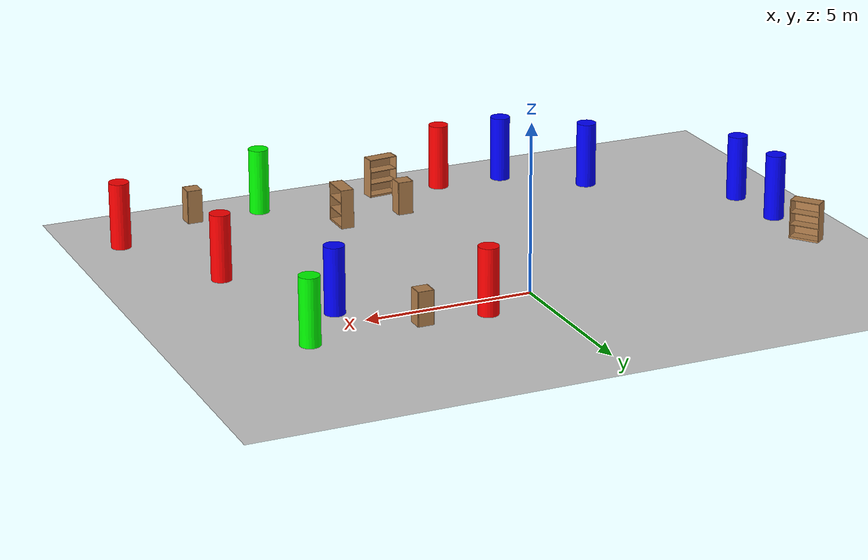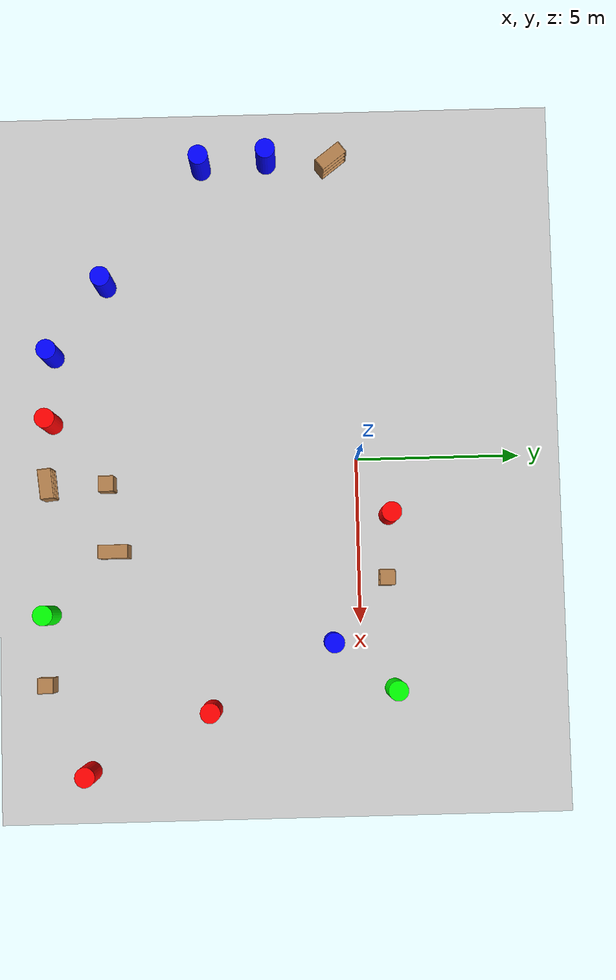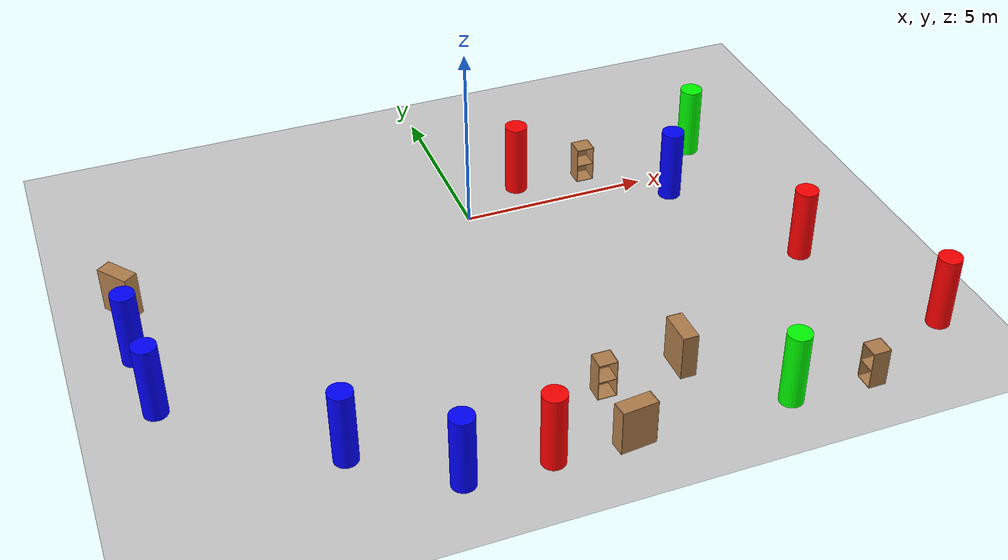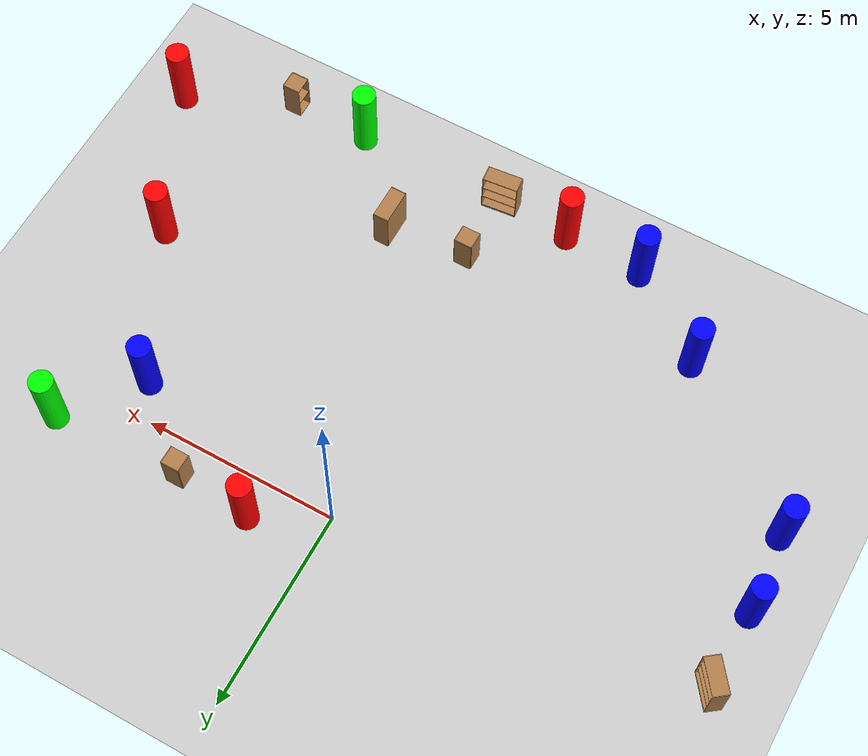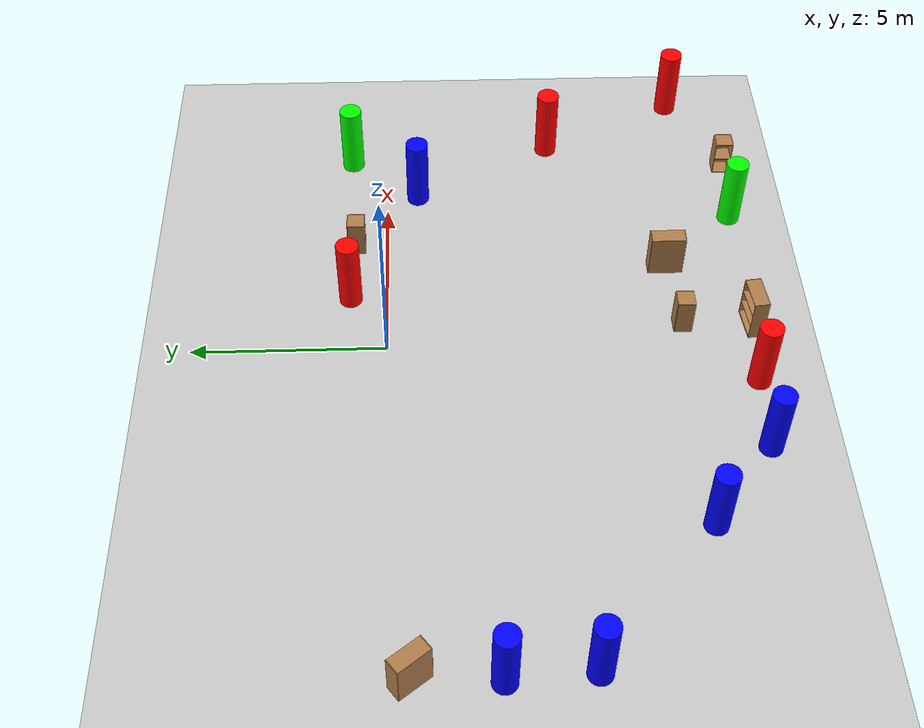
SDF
<sdf version="1.6">
 <world name="default">
  <model name="ground_plane">
   <static>1</static>
   <link name="link">
    <collision name="collision">
     <geometry><plane><normal>0 0 1</normal><size>100 100</size></plane></geometry>
     <surface>
      <contact><collide_bitmask>65535</collide_bitmask></contact>
      <friction><ode><mu>100</mu><mu2>50</mu2></ode></friction>
     </surface>
    </collision>
    <visual name="visual">
     <cast_shadows>0</cast_shadows>
     <geometry><plane><normal>0 0 1</normal><size>100 100</size></plane></geometry>
     <material>
      <script><uri>file://media/materials/scripts/gazebo.material</uri><name>Gazebo/Grey</name></script>
     </material>
    </visual>
   </link>
  </model>
  <model name="bookshelf0">
   <static>1</static>
   <link name="link">
    <inertial><mass>1</mass></inertial>
    <collision name="back">
     <pose>0 0.005 0.6 0 -0 0</pose>
     <geometry><box><size>0.9 0.01 1.2</size></box></geometry>
    </collision>
    <visual name="visual1">
     <pose>0 0.005 0.6 0 -0 0</pose>
     <geometry><box><size>0.9 0.01 1.2</size></box></geometry>
     <material>
      <script><uri>file://media/materials/scripts/gazebo.material</uri><name>Gazebo/Wood</name></script>
     </material>
    </visual>
    <collision name="left_side">
     <pose>0.45 -0.195 0.6 0 -0 0</pose>
     <geometry><box><size>0.02 0.4 1.2</size></box></geometry>
    </collision>
    <visual name="visual2">
     <pose>0.45 -0.195 0.6 0 -0 0</pose>
     <geometry><box><size>0.02 0.4 1.2</size></box></geometry>
     <material>
      <script><uri>file://media/materials/scripts/gazebo.material</uri><name>Gazebo/Wood</name></script>
     </material>
    </visual>
    <collision name="right_side">
     <pose>-0.45 -0.195 0.6 0 -0 0</pose>
     <geometry><box><size>0.02 0.4 1.2</size></box></geometry>
    </collision>
    <visual name="visual3">
     <pose>-0.45 -0.195 0.6 0 -0 0</pose>
     <geometry><box><size>0.02 0.4 1.2</size></box></geometry>
     <material>
      <script><uri>file://media/materials/scripts/gazebo.material</uri><name>Gazebo/Wood</name></script>
     </material>
    </visual>
    <collision name="bottom">
     <pose>0 -0.195 0.03 0 -0 0</pose>
     <geometry><box><size>0.88 0.4 0.06</size></box></geometry>
    </collision>
    <visual name="visual4">
     <pose>0 -0.195 0.03 0 -0 0</pose>
     <geometry><box><size>0.88 0.4 0.06</size></box></geometry>
     <material>
      <script><uri>file://media/materials/scripts/gazebo.material</uri><name>Gazebo/Wood</name></script>
     </material>
    </visual>
    <collision name="top">
     <pose>0 -0.195 1.19 0 -0 0</pose>
     <geometry><box><size>0.88 0.4 0.02</size></box></geometry>
    </collision>
    <visual name="visual5">
     <pose>0 -0.195 1.19 0 -0 0</pose>
     <geometry><box><size>0.88 0.4 0.02</size></box></geometry>
     <material>
      <script><uri>file://media/materials/scripts/gazebo.material</uri><name>Gazebo/Wood</name></script>
     </material>
    </visual>
    <collision name="low_shelf">
     <pose>0 -0.195 0.43 0 -0 0</pose>
     <geometry><box><size>0.88 0.4 0.02</size></box></geometry>
    </collision>
    <visual name="visual6">
     <pose>0 -0.195 0.43 0 -0 0</pose>
     <geometry><box><size>0.88 0.4 0.02</size></box></geometry>
     <material>
      <script><uri>file://media/materials/scripts/gazebo.material</uri><name>Gazebo/Wood</name></script>
     </material>
    </visual>
    <collision name="high_shelf">
     <pose>0 -0.195 0.8 0 -0 0</pose>
     <geometry><box><size>0.88 0.4 0.02</size></box></geometry>
    </collision>
    <visual name="visual7">
     <pose>0 -0.195 0.8 0 -0 0</pose>
     <geometry><box><size>0.88 0.4 0.02</size></box></geometry>
     <material>
      <script><uri>file://media/materials/scripts/gazebo.material</uri><name>Gazebo/Wood</name></script>
     </material>
    </visual>
   </link>
   <pose>-9.41642 -0.664219 0 0 -0 2.221</pose>
  </model>
  <model name="bookshelf3">
   <static>1</static>
   <link name="link">
    <inertial><mass>1</mass></inertial>
    <collision name="back">
     <pose>0 0.005 0.6 0 -0 0</pose>
     <geometry><box><size>0.9 0.01 1.2</size></box></geometry>
    </collision>
    <visual name="visual1">
     <pose>0 0.005 0.6 0 -0 0</pose>
     <geometry><box><size>0.9 0.01 1.2</size></box></geometry>
     <material>
      <script><uri>file://media/materials/scripts/gazebo.material</uri><name>Gazebo/Wood</name></script>
     </material>
    </visual>
    <collision name="left_side">
     <pose>0.45 -0.195 0.6 0 -0 0</pose>
     <geometry><box><size>0.02 0.4 1.2</size></box></geometry>
    </collision>
    <visual name="visual2">
     <pose>0.45 -0.195 0.6 0 -0 0</pose>
     <geometry><box><size>0.02 0.4 1.2</size></box></geometry>
     <material>
      <script><uri>file://media/materials/scripts/gazebo.material</uri><name>Gazebo/Wood</name></script>
     </material>
    </visual>
    <collision name="right_side">
     <pose>-0.45 -0.195 0.6 0 -0 0</pose>
     <geometry><box><size>0.02 0.4 1.2</size></box></geometry>
    </collision>
    <visual name="visual3">
     <pose>-0.45 -0.195 0.6 0 -0 0</pose>
     <geometry><box><size>0.02 0.4 1.2</size></box></geometry>
     <material>
      <script><uri>file://media/materials/scripts/gazebo.material</uri><name>Gazebo/Wood</name></script>
     </material>
    </visual>
    <collision name="bottom">
     <pose>0 -0.195 0.03 0 -0 0</pose>
     <geometry><box><size>0.88 0.4 0.06</size></box></geometry>
    </collision>
    <visual name="visual4">
     <pose>0 -0.195 0.03 0 -0 0</pose>
     <geometry><box><size>0.88 0.4 0.06</size></box></geometry>
     <material>
      <script><uri>file://media/materials/scripts/gazebo.material</uri><name>Gazebo/Wood</name></script>
     </material>
    </visual>
    <collision name="top">
     <pose>0 -0.195 1.19 0 -0 0</pose>
     <geometry><box><size>0.88 0.4 0.02</size></box></geometry>
    </collision>
    <visual name="visual5">
     <pose>0 -0.195 1.19 0 -0 0</pose>
     <geometry><box><size>0.88 0.4 0.02</size></box></geometry>
     <material>
      <script><uri>file://media/materials/scripts/gazebo.material</uri><name>Gazebo/Wood</name></script>
     </material>
    </visual>
    <collision name="low_shelf">
     <pose>0 -0.195 0.43 0 -0 0</pose>
     <geometry><box><size>0.88 0.4 0.02</size></box></geometry>
    </collision>
    <visual name="visual6">
     <pose>0 -0.195 0.43 0 -0 0</pose>
     <geometry><box><size>0.88 0.4 0.02</size></box></geometry>
     <material>
      <script><uri>file://media/materials/scripts/gazebo.material</uri><name>Gazebo/Wood</name></script>
     </material>
    </visual>
    <collision name="high_shelf">
     <pose>0 -0.195 0.8 0 -0 0</pose>
     <geometry><box><size>0.88 0.4 0.02</size></box></geometry>
    </collision>
    <visual name="visual7">
     <pose>0 -0.195 0.8 0 -0 0</pose>
     <geometry><box><size>0.88 0.4 0.02</size></box></geometry>
     <material>
      <script><uri>file://media/materials/scripts/gazebo.material</uri><name>Gazebo/Wood</name></script>
     </material>
    </visual>
   </link>
   <pose>0.596082 -9.6045 0 0 0 -3.04017</pose>
  </model>
  <model name="red3">
   <link name="link">
    <pose>-0.202221 0.506091 0 0 -0 0</pose>
    <inertial>
     <mass>1</mass>
     <inertia><ixx>0.145833</ixx><ixy>0</ixy><ixz>0</ixz><iyy>0.145833</iyy><iyz>0</iyz><izz>0.125</izz></inertia>
    </inertial>
    <visual name="visual">
     <geometry><cylinder><radius>0.3</radius><length>2</length></cylinder></geometry>
     <material>
      <script><name>Gazebo/Grey</name><uri>file://media/materials/scripts/gazebo.material</uri></script>
      <ambient>1 0 0 1</ambient>
      <diffuse>0.7 0.7 0.7 1</diffuse>
      <specular>0.01 0.01 0.01 1</specular>
      <emissive>0 0 0 1</emissive>
      <shader type="vertex"><normal_map>__default__</normal_map></shader>
     </material>
    </visual>
    <collision name="collision">
     <geometry><cylinder><radius>0.3</radius><length>2</length></cylinder></geometry>
     <surface>
      <friction>
       <ode><mu>1</mu><mu2>1</mu2><fdir1>0 0 0</fdir1><slip1>0</slip1><slip2>0</slip2></ode>
       <torsional>
        <coefficient>1</coefficient>
        <patch_radius>0</patch_radius>
        <surface_radius>0</surface_radius>
        <use_patch_radius>1</use_patch_radius>
        <ode><slip>0</slip></ode>
       </torsional>
      </friction>
      <bounce><restitution_coefficient>0</restitution_coefficient><threshold>1e+06</threshold></bounce>
      <contact>
       <collide_without_contact>0</collide_without_contact>
       <collide_without_contact_bitmask>1</collide_without_contact_bitmask>
       <collide_bitmask>1</collide_bitmask>
       <ode>
        <soft_cfm>0</soft_cfm>
        <soft_erp>0.2</soft_erp>
        <kp>1e+13</kp>
        <kd>1</kd>
        <max_vel>0.01</max_vel>
        <min_depth>0</min_depth>
       </ode>
       <bullet>
        <split_impulse>1</split_impulse>
        <split_impulse_penetration_threshold>-0.01</split_impulse_penetration_threshold>
        <soft_cfm>0</soft_cfm>
        <soft_erp>0.2</soft_erp>
        <kp>1e+13</kp>
        <kd>1</kd>
       </bullet>
      </contact>
     </surface>
    </collision>
   </link>
   <static>0</static>
   <pose>-1.12177 -9.80828 0.999991 0 -0 4.9e-05</pose>
  </model>
  <model name="blue0">
   <link name="link">
    <inertial>
     <mass>1</mass>
     <inertia><ixx>0.145833</ixx><ixy>0</ixy><ixz>0</ixz><iyy>0.145833</iyy><iyz>0</iyz><izz>0.125</izz></inertia>
    </inertial>
    <visual name="visual">
     <geometry><cylinder><radius>0.3</radius><length>2</length></cylinder></geometry>
     <material>
      <script><name>Gazebo/Grey</name><uri>file://media/materials/scripts/gazebo.material</uri></script>
      <ambient>0 0 1 1</ambient>
      <diffuse>0.7 0.7 0.7 1</diffuse>
      <specular>0.01 0.01 0.01 1</specular>
      <emissive>0 0 0 1</emissive>
      <shader type="vertex"><normal_map>__default__</normal_map></shader>
     </material>
    </visual>
    <collision name="collision">
     <geometry><cylinder><radius>0.2</radius><length>2</length></cylinder></geometry>
     <surface>
      <friction>
       <ode><mu>1</mu><mu2>1</mu2><fdir1>0 0 0</fdir1><slip1>0</slip1><slip2>0</slip2></ode>
       <torsional>
        <coefficient>1</coefficient>
        <patch_radius>0</patch_radius>
        <surface_radius>0</surface_radius>
        <use_patch_radius>1</use_patch_radius>
        <ode><slip>0</slip></ode>
       </torsional>
      </friction>
      <bounce><restitution_coefficient>0</restitution_coefficient><threshold>1e+06</threshold></bounce>
      <contact>
       <collide_without_contact>0</collide_without_contact>
       <collide_without_contact_bitmask>1</collide_without_contact_bitmask>
       <collide_bitmask>1</collide_bitmask>
       <ode>
        <soft_cfm>0</soft_cfm>
        <soft_erp>0.2</soft_erp>
        <kp>1e+13</kp>
        <kd>1</kd>
        <max_vel>0.01</max_vel>
        <min_depth>0</min_depth>
       </ode>
       <bullet>
        <split_impulse>1</split_impulse>
        <split_impulse_penetration_threshold>-0.01</split_impulse_penetration_threshold>
        <soft_cfm>0</soft_cfm>
        <soft_erp>0.2</soft_erp>
        <kp>1e+13</kp>
        <kd>1</kd>
       </bullet>
      </contact>
     </surface>
    </collision>
   </link>
   <static>0</static>
   <pose>-3.38855 -9.22957 0.999996 0 0 -0.011931</pose>
  </model>
  <model name="blue3">
   <link name="link">
    <inertial>
     <mass>1</mass>
     <inertia><ixx>0.145833</ixx><ixy>0</ixy><ixz>0</ixz><iyy>0.145833</iyy><iyz>0</iyz><izz>0.125</izz></inertia>
    </inertial>
    <visual name="visual">
     <geometry><cylinder><radius>0.3</radius><length>2</length></cylinder></geometry>
     <material>
      <script><name>Gazebo/Grey</name><uri>file://media/materials/scripts/gazebo.material</uri></script>
      <ambient>0 0 1 1</ambient>
      <diffuse>0.7 0.7 0.7 1</diffuse>
      <specular>0.01 0.01 0.01 1</specular>
      <emissive>0 0 0 1</emissive>
      <shader type="vertex"><normal_map>__default__</normal_map></shader>
     </material>
    </visual>
    <collision name="collision">
     <geometry><cylinder><radius>0.2</radius><length>2</length></cylinder></geometry>
     <surface>
      <friction>
       <ode><mu>1</mu><mu2>1</mu2><fdir1>0 0 0</fdir1><slip1>0</slip1><slip2>0</slip2></ode>
       <torsional>
        <coefficient>1</coefficient>
        <patch_radius>0</patch_radius>
        <surface_radius>0</surface_radius>
        <use_patch_radius>1</use_patch_radius>
        <ode><slip>0</slip></ode>
       </torsional>
      </friction>
      <bounce><restitution_coefficient>0</restitution_coefficient><threshold>1e+06</threshold></bounce>
      <contact>
       <collide_without_contact>0</collide_without_contact>
       <collide_without_contact_bitmask>1</collide_without_contact_bitmask>
       <collide_bitmask>1</collide_bitmask>
       <ode>
        <soft_cfm>0</soft_cfm>
        <soft_erp>0.2</soft_erp>
        <kp>1e+13</kp>
        <kd>1</kd>
        <max_vel>0.01</max_vel>
        <min_depth>0</min_depth>
       </ode>
       <bullet>
        <split_impulse>1</split_impulse>
        <split_impulse_penetration_threshold>-0.01</split_impulse_penetration_threshold>
        <soft_cfm>0</soft_cfm>
        <soft_erp>0.2</soft_erp>
        <kp>1e+13</kp>
        <kd>1</kd>
       </bullet>
      </contact>
     </surface>
    </collision>
   </link>
   <static>0</static>
   <pose>-9.32981 -2.54026 1 0 0 -0.009931</pose>
  </model>
  <model name="blue4">
   <link name="link">
    <inertial>
     <mass>1</mass>
     <inertia><ixx>0.145833</ixx><ixy>0</ixy><ixz>0</ixz><iyy>0.145833</iyy><iyz>0</iyz><izz>0.125</izz></inertia>
    </inertial>
    <visual name="visual">
     <geometry><cylinder><radius>0.3</radius><length>2</length></cylinder></geometry>
     <material>
      <script><name>Gazebo/Grey</name><uri>file://media/materials/scripts/gazebo.material</uri></script>
      <ambient>0 0 1 1</ambient>
      <diffuse>0.7 0.7 0.7 1</diffuse>
      <specular>0.01 0.01 0.01 1</specular>
      <emissive>0 0 0 1</emissive>
      <shader type="vertex"><normal_map>__default__</normal_map></shader>
     </material>
    </visual>
    <collision name="collision">
     <geometry><cylinder><radius>0.2</radius><length>2</length></cylinder></geometry>
     <surface>
      <friction>
       <ode><mu>1</mu><mu2>1</mu2><fdir1>0 0 0</fdir1><slip1>0</slip1><slip2>0</slip2></ode>
       <torsional>
        <coefficient>1</coefficient>
        <patch_radius>0</patch_radius>
        <surface_radius>0</surface_radius>
        <use_patch_radius>1</use_patch_radius>
        <ode><slip>0</slip></ode>
       </torsional>
      </friction>
      <bounce><restitution_coefficient>0</restitution_coefficient><threshold>1e+06</threshold></bounce>
      <contact>
       <collide_without_contact>0</collide_without_contact>
       <collide_without_contact_bitmask>1</collide_without_contact_bitmask>
       <collide_bitmask>1</collide_bitmask>
       <ode>
        <soft_cfm>0</soft_cfm>
        <soft_erp>0.2</soft_erp>
        <kp>1e+13</kp>
        <kd>1</kd>
        <max_vel>0.01</max_vel>
        <min_depth>0</min_depth>
       </ode>
       <bullet>
        <split_impulse>1</split_impulse>
        <split_impulse_penetration_threshold>-0.01</split_impulse_penetration_threshold>
        <soft_cfm>0</soft_cfm>
        <soft_erp>0.2</soft_erp>
        <kp>1e+13</kp>
        <kd>1</kd>
       </bullet>
      </contact>
     </surface>
    </collision>
   </link>
   <static>0</static>
   <pose>-9.18518 -4.56966 1 0 0 -0.010988</pose>
  </model>
  <model name="cabinet0_clone">
   <static>1</static>
   <link name="cabinet_bottom_plate">
    <inertial>
     <pose>0 0 -1 0 -0 0</pose>
     <inertia><ixx>2.05</ixx><ixy>0</ixy><ixz>0</ixz><iyy>2.05</iyy><iyz>0</iyz><izz>2.05</izz></inertia>
     <mass>25</mass>
    </inertial>
    <collision name="cabinet_bottom_plate_geom">
     <pose>0 0 0.01 0 -0 0</pose>
     <geometry><box><size>0.45 0.45 0.02</size></box></geometry>
    </collision>
    <visual name="cabinet_bottom_plate_geom_visual">
     <pose>0 0 0.01 0 -0 0</pose>
     <geometry><box><size>0.45 0.45 0.02</size></box></geometry>
     <material>
      <script><uri>file://media/materials/scripts/gazebo.material</uri><name>Gazebo/Wood</name></script>
     </material>
    </visual>
    <collision name="cabinet_bottom_plate_geom_cabinet_back_plate">
     <pose>0.235 0 0.51 0 -0 0</pose>
     <geometry><box><size>0.02 0.45 1.02</size></box></geometry>
    </collision>
    <visual name="cabinet_bottom_plate_geom_cabinet_back_plate_visual">
     <pose>0.235 0 0.51 0 -0 0</pose>
     <geometry><box><size>0.02 0.45 1.02</size></box></geometry>
     <material>
      <script><uri>file://media/materials/scripts/gazebo.material</uri><name>Gazebo/Wood</name></script>
     </material>
    </visual>
    <collision name="cabinet_bottom_plate_geom_cabinet_left_plate">
     <pose>0 0.235 0.51 0 -0 0</pose>
     <geometry><box><size>0.45 0.02 1.02</size></box></geometry>
    </collision>
    <visual name="cabinet_bottom_plate_geom_cabinet_left_plate_visual">
     <pose>0 0.235 0.51 0 -0 0</pose>
     <geometry><box><size>0.45 0.02 1.02</size></box></geometry>
     <material>
      <script><uri>file://media/materials/scripts/gazebo.material</uri><name>Gazebo/Wood</name></script>
     </material>
    </visual>
    <collision name="cabinet_bottom_plate_geom_cabinet_middle_plate">
     <pose>0 0 0.51 0 -0 0</pose>
     <geometry><box><size>0.45 0.45 0.02</size></box></geometry>
    </collision>
    <visual name="cabinet_bottom_plate_geom_cabinet_middle_plate_visual">
     <pose>0 0 0.51 0 -0 0</pose>
     <geometry><box><size>0.45 0.45 0.02</size></box></geometry>
     <material>
      <script><uri>file://media/materials/scripts/gazebo.material</uri><name>Gazebo/Wood</name></script>
     </material>
    </visual>
    <collision name="cabinet_bottom_plate_geom_cabinet_right_plate">
     <pose>0 -0.235 0.51 0 -0 0</pose>
     <geometry><box><size>0.45 0.02 1.02</size></box></geometry>
    </collision>
    <visual name="cabinet_bottom_plate_geom_cabinet_right_plate_visual">
     <pose>0 -0.235 0.51 0 -0 0</pose>
     <geometry><box><size>0.45 0.02 1.02</size></box></geometry>
     <material>
      <script><uri>file://media/materials/scripts/gazebo.material</uri><name>Gazebo/Wood</name></script>
     </material>
    </visual>
    <collision name="cabinet_bottom_plate_geom_cabinet_top_plate">
     <pose>0 0 1.01 0 -0 0</pose>
     <geometry><box><size>0.45 0.45 0.02</size></box></geometry>
    </collision>
    <visual name="cabinet_bottom_plate_geom_cabinet_top_plate_visual">
     <pose>0 0 1.01 0 -0 0</pose>
     <geometry><box><size>0.45 0.45 0.02</size></box></geometry>
     <material>
      <script><uri>file://media/materials/scripts/gazebo.material</uri><name>Gazebo/Wood</name></script>
     </material>
    </visual>
   </link>
   <pose>6.62056 -9.51383 0 0 -0 0</pose>
  </model>
  <model name="green4_clone">
   <link name="link">
    <inertial>
     <mass>1</mass>
     <inertia><ixx>0.145833</ixx><ixy>0</ixy><ixz>0</ixz><iyy>0.145833</iyy><iyz>0</iyz><izz>0.125</izz></inertia>
    </inertial>
    <visual name="visual">
     <geometry><cylinder><radius>0.3</radius><length>2</length></cylinder></geometry>
     <material>
      <script><name>Gazebo/Grey</name><uri>file://media/materials/scripts/gazebo.material</uri></script>
      <ambient>0 1 0 1</ambient>
      <diffuse>0.7 0.7 0.7 1</diffuse>
      <specular>0.01 0.01 0.01 1</specular>
      <emissive>0 0 0 1</emissive>
      <shader type="vertex"><normal_map>__default__</normal_map></shader>
     </material>
    </visual>
    <collision name="collision">
     <geometry><cylinder><radius>0.3</radius><length>2</length></cylinder></geometry>
     <surface>
      <friction>
       <ode><mu>1</mu><mu2>1</mu2><fdir1>0 0 0</fdir1><slip1>0</slip1><slip2>0</slip2></ode>
       <torsional>
        <coefficient>1</coefficient>
        <patch_radius>0</patch_radius>
        <surface_radius>0</surface_radius>
        <use_patch_radius>1</use_patch_radius>
        <ode><slip>0</slip></ode>
       </torsional>
      </friction>
      <bounce><restitution_coefficient>0</restitution_coefficient><threshold>1e+06</threshold></bounce>
      <contact>
       <collide_without_contact>0</collide_without_contact>
       <collide_without_contact_bitmask>1</collide_without_contact_bitmask>
       <collide_bitmask>1</collide_bitmask>
       <ode>
        <soft_cfm>0</soft_cfm>
        <soft_erp>0.2</soft_erp>
        <kp>1e+13</kp>
        <kd>1</kd>
        <max_vel>0.01</max_vel>
        <min_depth>0</min_depth>
       </ode>
       <bullet>
        <split_impulse>1</split_impulse>
        <split_impulse_penetration_threshold>-0.01</split_impulse_penetration_threshold>
        <soft_cfm>0</soft_cfm>
        <soft_erp>0.2</soft_erp>
        <kp>1e+13</kp>
        <kd>1</kd>
       </bullet>
      </contact>
     </surface>
    </collision>
   </link>
   <static>0</static>
   <pose>4.52907 -9.43164 0.999999 0 -0 9.8e-05</pose>
  </model>
  <model name="red0_clone">
   <link name="link">
    <pose>-0.202221 0.506091 0 0 -0 0</pose>
    <inertial>
     <mass>1</mass>
     <inertia><ixx>0.145833</ixx><ixy>0</ixy><ixz>0</ixz><iyy>0.145833</iyy><iyz>0</iyz><izz>0.125</izz></inertia>
    </inertial>
    <visual name="visual">
     <geometry><cylinder><radius>0.3</radius><length>2</length></cylinder></geometry>
     <material>
      <script><name>Gazebo/Grey</name><uri>file://media/materials/scripts/gazebo.material</uri></script>
      <ambient>1 0 0 1</ambient>
      <diffuse>0.7 0.7 0.7 1</diffuse>
      <specular>0.01 0.01 0.01 1</specular>
      <emissive>0 0 0 1</emissive>
      <shader type="vertex"><normal_map>__default__</normal_map></shader>
     </material>
    </visual>
    <collision name="collision">
     <geometry><cylinder><radius>0.3</radius><length>2</length></cylinder></geometry>
     <surface>
      <friction>
       <ode><mu>1</mu><mu2>1</mu2><fdir1>0 0 0</fdir1><slip1>0</slip1><slip2>0</slip2></ode>
       <torsional>
        <coefficient>1</coefficient>
        <patch_radius>0</patch_radius>
        <surface_radius>0</surface_radius>
        <use_patch_radius>1</use_patch_radius>
        <ode><slip>0</slip></ode>
       </torsional>
      </friction>
      <bounce><restitution_coefficient>0</restitution_coefficient><threshold>1e+06</threshold></bounce>
      <contact>
       <collide_without_contact>0</collide_without_contact>
       <collide_without_contact_bitmask>1</collide_without_contact_bitmask>
       <collide_bitmask>1</collide_bitmask>
       <ode>
        <soft_cfm>0</soft_cfm>
        <soft_erp>0.2</soft_erp>
        <kp>1e+13</kp>
        <kd>1</kd>
        <max_vel>0.01</max_vel>
        <min_depth>0</min_depth>
       </ode>
       <bullet>
        <split_impulse>1</split_impulse>
        <split_impulse_penetration_threshold>-0.01</split_impulse_penetration_threshold>
        <soft_cfm>0</soft_cfm>
        <soft_erp>0.2</soft_erp>
        <kp>1e+13</kp>
        <kd>1</kd>
       </bullet>
      </contact>
     </surface>
    </collision>
   </link>
   <static>0</static>
   <pose>9.4772 -8.76671 0.999991 0 -0 9.3e-05</pose>
  </model>
  <model name="blue0_clone">
   <link name="link">
    <inertial>
     <mass>1</mass>
     <inertia><ixx>0.145833</ixx><ixy>0</ixy><ixz>0</ixz><iyy>0.145833</iyy><iyz>0</iyz><izz>0.125</izz></inertia>
    </inertial>
    <visual name="visual">
     <geometry><cylinder><radius>0.3</radius><length>2</length></cylinder></geometry>
     <material>
      <script><name>Gazebo/Grey</name><uri>file://media/materials/scripts/gazebo.material</uri></script>
      <ambient>0 0 1 1</ambient>
      <diffuse>0.7 0.7 0.7 1</diffuse>
      <specular>0.01 0.01 0.01 1</specular>
      <emissive>0 0 0 1</emissive>
      <shader type="vertex"><normal_map>__default__</normal_map></shader>
     </material>
    </visual>
    <collision name="collision">
     <geometry><cylinder><radius>0.2</radius><length>2</length></cylinder></geometry>
     <surface>
      <friction>
       <ode><mu>1</mu><mu2>1</mu2><fdir1>0 0 0</fdir1><slip1>0</slip1><slip2>0</slip2></ode>
       <torsional>
        <coefficient>1</coefficient>
        <patch_radius>0</patch_radius>
        <surface_radius>0</surface_radius>
        <use_patch_radius>1</use_patch_radius>
        <ode><slip>0</slip></ode>
       </torsional>
      </friction>
      <bounce><restitution_coefficient>0</restitution_coefficient><threshold>1e+06</threshold></bounce>
      <contact>
       <collide_without_contact>0</collide_without_contact>
       <collide_without_contact_bitmask>1</collide_without_contact_bitmask>
       <collide_bitmask>1</collide_bitmask>
       <ode>
        <soft_cfm>0</soft_cfm>
        <soft_erp>0.2</soft_erp>
        <kp>1e+13</kp>
        <kd>1</kd>
        <max_vel>0.01</max_vel>
        <min_depth>0</min_depth>
       </ode>
       <bullet>
        <split_impulse>1</split_impulse>
        <split_impulse_penetration_threshold>-0.01</split_impulse_penetration_threshold>
        <soft_cfm>0</soft_cfm>
        <soft_erp>0.2</soft_erp>
        <kp>1e+13</kp>
        <kd>1</kd>
       </bullet>
      </contact>
     </surface>
    </collision>
   </link>
   <static>0</static>
   <pose>-5.55411 -7.58437 0.99999 0 -0 -0.011994</pose>
  </model>
  <model name="cabinet4_clone">
   <static>1</static>
   <link name="cabinet_bottom_plate">
    <inertial>
     <pose>0 0 -1 0 -0 0</pose>
     <inertia><ixx>2.05</ixx><ixy>0</ixy><ixz>0</ixz><iyy>2.05</iyy><iyz>0</iyz><izz>2.05</izz></inertia>
     <mass>25</mass>
    </inertial>
    <collision name="cabinet_bottom_plate_geom">
     <pose>0 0 0.01 0 -0 0</pose>
     <geometry><box><size>0.45 0.45 0.02</size></box></geometry>
    </collision>
    <visual name="cabinet_bottom_plate_geom_visual">
     <pose>0 0 0.01 0 -0 0</pose>
     <geometry><box><size>0.45 0.45 0.02</size></box></geometry>
     <material>
      <script><uri>file://media/materials/scripts/gazebo.material</uri><name>Gazebo/Wood</name></script>
     </material>
    </visual>
    <collision name="cabinet_bottom_plate_geom_cabinet_back_plate">
     <pose>0.235 0 0.51 0 -0 0</pose>
     <geometry><box><size>0.02 0.45 1.02</size></box></geometry>
    </collision>
    <visual name="cabinet_bottom_plate_geom_cabinet_back_plate_visual">
     <pose>0.235 0 0.51 0 -0 0</pose>
     <geometry><box><size>0.02 0.45 1.02</size></box></geometry>
     <material>
      <script><uri>file://media/materials/scripts/gazebo.material</uri><name>Gazebo/Wood</name></script>
     </material>
    </visual>
    <collision name="cabinet_bottom_plate_geom_cabinet_left_plate">
     <pose>0 0.235 0.51 0 -0 0</pose>
     <geometry><box><size>0.45 0.02 1.02</size></box></geometry>
    </collision>
    <visual name="cabinet_bottom_plate_geom_cabinet_left_plate_visual">
     <pose>0 0.235 0.51 0 -0 0</pose>
     <geometry><box><size>0.45 0.02 1.02</size></box></geometry>
     <material>
      <script><uri>file://media/materials/scripts/gazebo.material</uri><name>Gazebo/Wood</name></script>
     </material>
    </visual>
    <collision name="cabinet_bottom_plate_geom_cabinet_middle_plate">
     <pose>0 0 0.51 0 -0 0</pose>
     <geometry><box><size>0.45 0.45 0.02</size></box></geometry>
    </collision>
    <visual name="cabinet_bottom_plate_geom_cabinet_middle_plate_visual">
     <pose>0 0 0.51 0 -0 0</pose>
     <geometry><box><size>0.45 0.45 0.02</size></box></geometry>
     <material>
      <script><uri>file://media/materials/scripts/gazebo.material</uri><name>Gazebo/Wood</name></script>
     </material>
    </visual>
    <collision name="cabinet_bottom_plate_geom_cabinet_right_plate">
     <pose>0 -0.235 0.51 0 -0 0</pose>
     <geometry><box><size>0.45 0.02 1.02</size></box></geometry>
    </collision>
    <visual name="cabinet_bottom_plate_geom_cabinet_right_plate_visual">
     <pose>0 -0.235 0.51 0 -0 0</pose>
     <geometry><box><size>0.45 0.02 1.02</size></box></geometry>
     <material>
      <script><uri>file://media/materials/scripts/gazebo.material</uri><name>Gazebo/Wood</name></script>
     </material>
    </visual>
    <collision name="cabinet_bottom_plate_geom_cabinet_top_plate">
     <pose>0 0 1.01 0 -0 0</pose>
     <geometry><box><size>0.45 0.45 0.02</size></box></geometry>
    </collision>
    <visual name="cabinet_bottom_plate_geom_cabinet_top_plate_visual">
     <pose>0 0 1.01 0 -0 0</pose>
     <geometry><box><size>0.45 0.45 0.02</size></box></geometry>
     <material>
      <script><uri>file://media/materials/scripts/gazebo.material</uri><name>Gazebo/Wood</name></script>
     </material>
    </visual>
   </link>
   <pose>0.603587 -7.62051 0 0 -0 1.5708</pose>
  </model>
  <model name="bookshelf4_clone">
   <static>1</static>
   <link name="link">
    <inertial><mass>1</mass></inertial>
    <collision name="back">
     <pose>0 0.005 0.6 0 -0 0</pose>
     <geometry><box><size>0.9 0.01 1.2</size></box></geometry>
    </collision>
    <visual name="visual1">
     <pose>0 0.005 0.6 0 -0 0</pose>
     <geometry><box><size>0.9 0.01 1.2</size></box></geometry>
     <material>
      <script><uri>file://media/materials/scripts/gazebo.material</uri><name>Gazebo/Wood</name></script>
     </material>
    </visual>
    <collision name="left_side">
     <pose>0.45 -0.195 0.6 0 -0 0</pose>
     <geometry><box><size>0.02 0.4 1.2</size></box></geometry>
    </collision>
    <visual name="visual2">
     <pose>0.45 -0.195 0.6 0 -0 0</pose>
     <geometry><box><size>0.02 0.4 1.2</size></box></geometry>
     <material>
      <script><uri>file://media/materials/scripts/gazebo.material</uri><name>Gazebo/Wood</name></script>
     </material>
    </visual>
    <collision name="right_side">
     <pose>-0.45 -0.195 0.6 0 -0 0</pose>
     <geometry><box><size>0.02 0.4 1.2</size></box></geometry>
    </collision>
    <visual name="visual3">
     <pose>-0.45 -0.195 0.6 0 -0 0</pose>
     <geometry><box><size>0.02 0.4 1.2</size></box></geometry>
     <material>
      <script><uri>file://media/materials/scripts/gazebo.material</uri><name>Gazebo/Wood</name></script>
     </material>
    </visual>
    <collision name="bottom">
     <pose>0 -0.195 0.03 0 -0 0</pose>
     <geometry><box><size>0.88 0.4 0.06</size></box></geometry>
    </collision>
    <visual name="visual4">
     <pose>0 -0.195 0.03 0 -0 0</pose>
     <geometry><box><size>0.88 0.4 0.06</size></box></geometry>
     <material>
      <script><uri>file://media/materials/scripts/gazebo.material</uri><name>Gazebo/Wood</name></script>
     </material>
    </visual>
    <collision name="top">
     <pose>0 -0.195 1.19 0 -0 0</pose>
     <geometry><box><size>0.88 0.4 0.02</size></box></geometry>
    </collision>
    <visual name="visual5">
     <pose>0 -0.195 1.19 0 -0 0</pose>
     <geometry><box><size>0.88 0.4 0.02</size></box></geometry>
     <material>
      <script><uri>file://media/materials/scripts/gazebo.material</uri><name>Gazebo/Wood</name></script>
     </material>
    </visual>
    <collision name="low_shelf">
     <pose>0 -0.195 0.43 0 -0 0</pose>
     <geometry><box><size>0.88 0.4 0.02</size></box></geometry>
    </collision>
    <visual name="visual6">
     <pose>0 -0.195 0.43 0 -0 0</pose>
     <geometry><box><size>0.88 0.4 0.02</size></box></geometry>
     <material>
      <script><uri>file://media/materials/scripts/gazebo.material</uri><name>Gazebo/Wood</name></script>
     </material>
    </visual>
    <collision name="high_shelf">
     <pose>0 -0.195 0.8 0 -0 0</pose>
     <geometry><box><size>0.88 0.4 0.02</size></box></geometry>
    </collision>
    <visual name="visual7">
     <pose>0 -0.195 0.8 0 -0 0</pose>
     <geometry><box><size>0.88 0.4 0.02</size></box></geometry>
     <material>
      <script><uri>file://media/materials/scripts/gazebo.material</uri><name>Gazebo/Wood</name></script>
     </material>
    </visual>
   </link>
   <pose>2.47178 -7.41597 0 0 -0 1.5708</pose>
  </model>
  <model name="red3_clone_clone">
   <link name="link">
    <pose>-0.202221 0.506091 0 0 -0 0</pose>
    <inertial>
     <mass>1</mass>
     <inertia><ixx>0.145833</ixx><ixy>0</ixy><ixz>0</ixz><iyy>0.145833</iyy><iyz>0</iyz><izz>0.125</izz></inertia>
    </inertial>
    <visual name="visual">
     <geometry><cylinder><radius>0.3</radius><length>2</length></cylinder></geometry>
     <material>
      <script><name>Gazebo/Grey</name><uri>file://media/materials/scripts/gazebo.material</uri></script>
      <ambient>1 0 0 1</ambient>
      <diffuse>0.7 0.7 0.7 1</diffuse>
      <specular>0.01 0.01 0.01 1</specular>
      <emissive>0 0 0 1</emissive>
      <shader type="vertex"><normal_map>__default__</normal_map></shader>
     </material>
    </visual>
    <collision name="collision">
     <geometry><cylinder><radius>0.3</radius><length>2</length></cylinder></geometry>
     <surface>
      <friction>
       <ode><mu>1</mu><mu2>1</mu2><fdir1>0 0 0</fdir1><slip1>0</slip1><slip2>0</slip2></ode>
       <torsional>
        <coefficient>1</coefficient>
        <patch_radius>0</patch_radius>
        <surface_radius>0</surface_radius>
        <use_patch_radius>1</use_patch_radius>
        <ode><slip>0</slip></ode>
       </torsional>
      </friction>
      <bounce><restitution_coefficient>0</restitution_coefficient><threshold>1e+06</threshold></bounce>
      <contact>
       <collide_without_contact>0</collide_without_contact>
       <collide_without_contact_bitmask>1</collide_without_contact_bitmask>
       <collide_bitmask>1</collide_bitmask>
       <ode>
        <soft_cfm>0</soft_cfm>
        <soft_erp>0.2</soft_erp>
        <kp>1e+13</kp>
        <kd>1</kd>
        <max_vel>0.01</max_vel>
        <min_depth>0</min_depth>
       </ode>
       <bullet>
        <split_impulse>1</split_impulse>
        <split_impulse_penetration_threshold>-0.01</split_impulse_penetration_threshold>
        <soft_cfm>0</soft_cfm>
        <soft_erp>0.2</soft_erp>
        <kp>1e+13</kp>
        <kd>1</kd>
       </bullet>
      </contact>
     </surface>
    </collision>
   </link>
   <static>0</static>
   <pose>7.71298 -5.06317 0.999999 0 -0 4.8e-05</pose>
  </model>
  <model name="blue4_clone">
   <link name="link">
    <inertial>
     <mass>1</mass>
     <inertia><ixx>0.145833</ixx><ixy>0</ixy><ixz>0</ixz><iyy>0.145833</iyy><iyz>0</iyz><izz>0.125</izz></inertia>
    </inertial>
    <visual name="visual">
     <geometry><cylinder><radius>0.3</radius><length>2</length></cylinder></geometry>
     <material>
      <script><name>Gazebo/Grey</name><uri>file://media/materials/scripts/gazebo.material</uri></script>
      <ambient>0 0 1 1</ambient>
      <diffuse>0.7 0.7 0.7 1</diffuse>
      <specular>0.01 0.01 0.01 1</specular>
      <emissive>0 0 0 1</emissive>
      <shader type="vertex"><normal_map>__default__</normal_map></shader>
     </material>
    </visual>
    <collision name="collision">
     <geometry><cylinder><radius>0.2</radius><length>2</length></cylinder></geometry>
     <surface>
      <friction>
       <ode><mu>1</mu><mu2>1</mu2><fdir1>0 0 0</fdir1><slip1>0</slip1><slip2>0</slip2></ode>
       <torsional>
        <coefficient>1</coefficient>
        <patch_radius>0</patch_radius>
        <surface_radius>0</surface_radius>
        <use_patch_radius>1</use_patch_radius>
        <ode><slip>0</slip></ode>
       </torsional>
      </friction>
      <bounce><restitution_coefficient>0</restitution_coefficient><threshold>1e+06</threshold></bounce>
      <contact>
       <collide_without_contact>0</collide_without_contact>
       <collide_without_contact_bitmask>1</collide_without_contact_bitmask>
       <collide_bitmask>1</collide_bitmask>
       <ode>
        <soft_cfm>0</soft_cfm>
        <soft_erp>0.2</soft_erp>
        <kp>1e+13</kp>
        <kd>1</kd>
        <max_vel>0.01</max_vel>
        <min_depth>0</min_depth>
       </ode>
       <bullet>
        <split_impulse>1</split_impulse>
        <split_impulse_penetration_threshold>-0.01</split_impulse_penetration_threshold>
        <soft_cfm>0</soft_cfm>
        <soft_erp>0.2</soft_erp>
        <kp>1e+13</kp>
        <kd>1</kd>
       </bullet>
      </contact>
     </surface>
    </collision>
   </link>
   <static>0</static>
   <pose>5.55112 -0.846414 1 0 0 -0.01097</pose>
  </model>
  <model name="red3_clone_1">
   <link name="link">
    <pose>-0.202221 0.506091 0 0 -0 0</pose>
    <inertial>
     <mass>1</mass>
     <inertia><ixx>0.145833</ixx><ixy>0</ixy><ixz>0</ixz><iyy>0.145833</iyy><iyz>0</iyz><izz>0.125</izz></inertia>
    </inertial>
    <visual name="visual">
     <geometry><cylinder><radius>0.3</radius><length>2</length></cylinder></geometry>
     <material>
      <script><name>Gazebo/Grey</name><uri>file://media/materials/scripts/gazebo.material</uri></script>
      <ambient>1 0 0 1</ambient>
      <diffuse>0.7 0.7 0.7 1</diffuse>
      <specular>0.01 0.01 0.01 1</specular>
      <emissive>0 0 0 1</emissive>
      <shader type="vertex"><normal_map>__default__</normal_map></shader>
     </material>
    </visual>
    <collision name="collision">
     <geometry><cylinder><radius>0.3</radius><length>2</length></cylinder></geometry>
     <surface>
      <friction>
       <ode><mu>1</mu><mu2>1</mu2><fdir1>0 0 0</fdir1><slip1>0</slip1><slip2>0</slip2></ode>
       <torsional>
        <coefficient>1</coefficient>
        <patch_radius>0</patch_radius>
        <surface_radius>0</surface_radius>
        <use_patch_radius>1</use_patch_radius>
        <ode><slip>0</slip></ode>
       </torsional>
      </friction>
      <bounce><restitution_coefficient>0</restitution_coefficient><threshold>1e+06</threshold></bounce>
      <contact>
       <collide_without_contact>0</collide_without_contact>
       <collide_without_contact_bitmask>1</collide_without_contact_bitmask>
       <collide_bitmask>1</collide_bitmask>
       <ode>
        <soft_cfm>0</soft_cfm>
        <soft_erp>0.2</soft_erp>
        <kp>1e+13</kp>
        <kd>1</kd>
        <max_vel>0.01</max_vel>
        <min_depth>0</min_depth>
       </ode>
       <bullet>
        <split_impulse>1</split_impulse>
        <split_impulse_penetration_threshold>-0.01</split_impulse_penetration_threshold>
        <soft_cfm>0</soft_cfm>
        <soft_erp>0.2</soft_erp>
        <kp>1e+13</kp>
        <kd>1</kd>
       </bullet>
      </contact>
     </surface>
    </collision>
   </link>
   <static>0</static>
   <pose>1.93216 0.443383 0.999991 0 -0 4.9e-05</pose>
  </model>
  <model name="cabinet4_clone_clone">
   <static>1</static>
   <link name="cabinet_bottom_plate">
    <inertial>
     <pose>0 0 -1 0 -0 0</pose>
     <inertia><ixx>2.05</ixx><ixy>0</ixy><ixz>0</ixz><iyy>2.05</iyy><iyz>0</iyz><izz>2.05</izz></inertia>
     <mass>25</mass>
    </inertial>
    <collision name="cabinet_bottom_plate_geom">
     <pose>0 0 0.01 0 -0 0</pose>
     <geometry><box><size>0.45 0.45 0.02</size></box></geometry>
    </collision>
    <visual name="cabinet_bottom_plate_geom_visual">
     <pose>0 0 0.01 0 -0 0</pose>
     <geometry><box><size>0.45 0.45 0.02</size></box></geometry>
     <material>
      <script><uri>file://media/materials/scripts/gazebo.material</uri><name>Gazebo/Wood</name></script>
     </material>
    </visual>
    <collision name="cabinet_bottom_plate_geom_cabinet_back_plate">
     <pose>0.235 0 0.51 0 -0 0</pose>
     <geometry><box><size>0.02 0.45 1.02</size></box></geometry>
    </collision>
    <visual name="cabinet_bottom_plate_geom_cabinet_back_plate_visual">
     <pose>0.235 0 0.51 0 -0 0</pose>
     <geometry><box><size>0.02 0.45 1.02</size></box></geometry>
     <material>
      <script><uri>file://media/materials/scripts/gazebo.material</uri><name>Gazebo/Wood</name></script>
     </material>
    </visual>
    <collision name="cabinet_bottom_plate_geom_cabinet_left_plate">
     <pose>0 0.235 0.51 0 -0 0</pose>
     <geometry><box><size>0.45 0.02 1.02</size></box></geometry>
    </collision>
    <visual name="cabinet_bottom_plate_geom_cabinet_left_plate_visual">
     <pose>0 0.235 0.51 0 -0 0</pose>
     <geometry><box><size>0.45 0.02 1.02</size></box></geometry>
     <material>
      <script><uri>file://media/materials/scripts/gazebo.material</uri><name>Gazebo/Wood</name></script>
     </material>
    </visual>
    <collision name="cabinet_bottom_plate_geom_cabinet_middle_plate">
     <pose>0 0 0.51 0 -0 0</pose>
     <geometry><box><size>0.45 0.45 0.02</size></box></geometry>
    </collision>
    <visual name="cabinet_bottom_plate_geom_cabinet_middle_plate_visual">
     <pose>0 0 0.51 0 -0 0</pose>
     <geometry><box><size>0.45 0.45 0.02</size></box></geometry>
     <material>
      <script><uri>file://media/materials/scripts/gazebo.material</uri><name>Gazebo/Wood</name></script>
     </material>
    </visual>
    <collision name="cabinet_bottom_plate_geom_cabinet_right_plate">
     <pose>0 -0.235 0.51 0 -0 0</pose>
     <geometry><box><size>0.45 0.02 1.02</size></box></geometry>
    </collision>
    <visual name="cabinet_bottom_plate_geom_cabinet_right_plate_visual">
     <pose>0 -0.235 0.51 0 -0 0</pose>
     <geometry><box><size>0.45 0.02 1.02</size></box></geometry>
     <material>
      <script><uri>file://media/materials/scripts/gazebo.material</uri><name>Gazebo/Wood</name></script>
     </material>
    </visual>
    <collision name="cabinet_bottom_plate_geom_cabinet_top_plate">
     <pose>0 0 1.01 0 -0 0</pose>
     <geometry><box><size>0.45 0.45 0.02</size></box></geometry>
    </collision>
    <visual name="cabinet_bottom_plate_geom_cabinet_top_plate_visual">
     <pose>0 0 1.01 0 -0 0</pose>
     <geometry><box><size>0.45 0.45 0.02</size></box></geometry>
     <material>
      <script><uri>file://media/materials/scripts/gazebo.material</uri><name>Gazebo/Wood</name></script>
     </material>
    </visual>
   </link>
   <pose>3.64346 0.815197 0 0 -0 1.5708</pose>
  </model>
  <model name="green6_clone_0">
   <link name="link">
    <inertial>
     <mass>1</mass>
     <inertia><ixx>0.145833</ixx><ixy>0</ixy><ixz>0</ixz><iyy>0.145833</iyy><iyz>0</iyz><izz>0.125</izz></inertia>
    </inertial>
    <visual name="visual">
     <geometry><cylinder><radius>0.3</radius><length>2</length></cylinder></geometry>
     <material>
      <script><name>Gazebo/Grey</name><uri>file://media/materials/scripts/gazebo.material</uri></script>
      <ambient>0 1 0 1</ambient>
      <diffuse>0.7 0.7 0.7 1</diffuse>
      <specular>0.01 0.01 0.01 1</specular>
      <emissive>0 0 0 1</emissive>
      <shader type="vertex"><normal_map>__default__</normal_map></shader>
     </material>
    </visual>
    <collision name="collision">
     <geometry><cylinder><radius>0.3</radius><length>2</length></cylinder></geometry>
     <surface>
      <friction>
       <ode><mu>1</mu><mu2>1</mu2><fdir1>0 0 0</fdir1><slip1>0</slip1><slip2>0</slip2></ode>
       <torsional>
        <coefficient>1</coefficient>
        <patch_radius>0</patch_radius>
        <surface_radius>0</surface_radius>
        <use_patch_radius>1</use_patch_radius>
        <ode><slip>0</slip></ode>
       </torsional>
      </friction>
      <bounce><restitution_coefficient>0</restitution_coefficient><threshold>1e+06</threshold></bounce>
      <contact>
       <collide_without_contact>0</collide_without_contact>
       <collide_without_contact_bitmask>1</collide_without_contact_bitmask>
       <collide_bitmask>1</collide_bitmask>
       <ode>
        <soft_cfm>0</soft_cfm>
        <soft_erp>0.2</soft_erp>
        <kp>1e+13</kp>
        <kd>1</kd>
        <max_vel>0.01</max_vel>
        <min_depth>0</min_depth>
       </ode>
       <bullet>
        <split_impulse>1</split_impulse>
        <split_impulse_penetration_threshold>-0.01</split_impulse_penetration_threshold>
        <soft_cfm>0</soft_cfm>
        <soft_erp>0.2</soft_erp>
        <kp>1e+13</kp>
        <kd>1</kd>
       </bullet>
      </contact>
     </surface>
    </collision>
   </link>
   <static>0</static>
   <pose>7.00095 0.986803 0.999997 0 -0 1.57251</pose>
  </model>
 </world>
</sdf>
